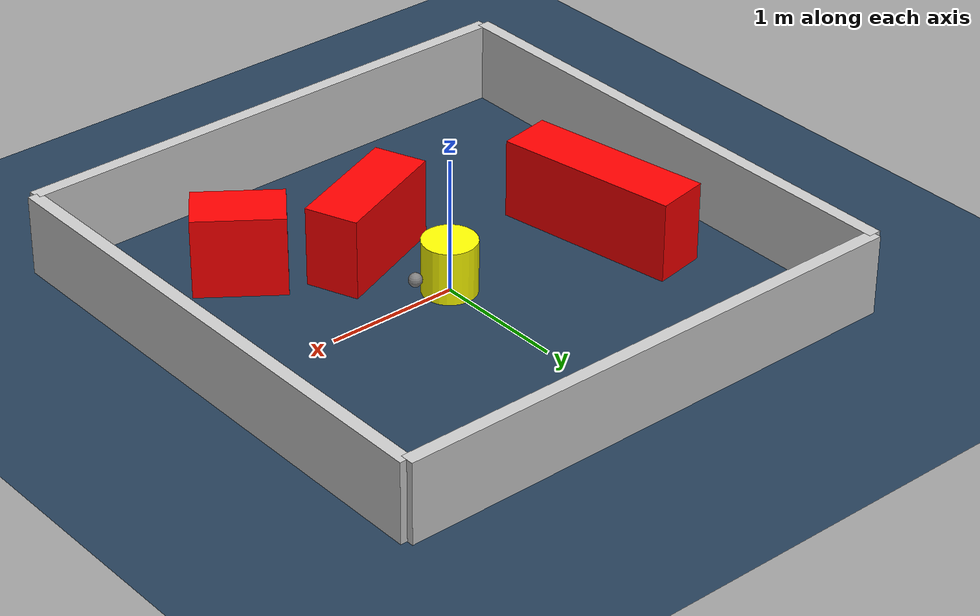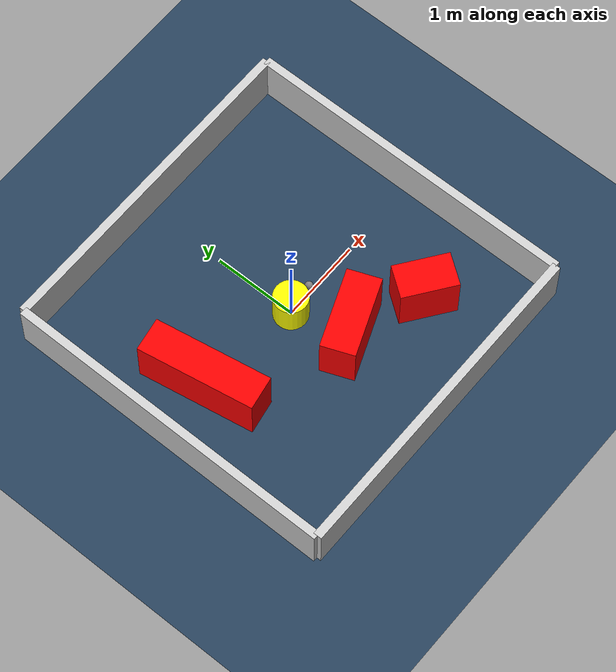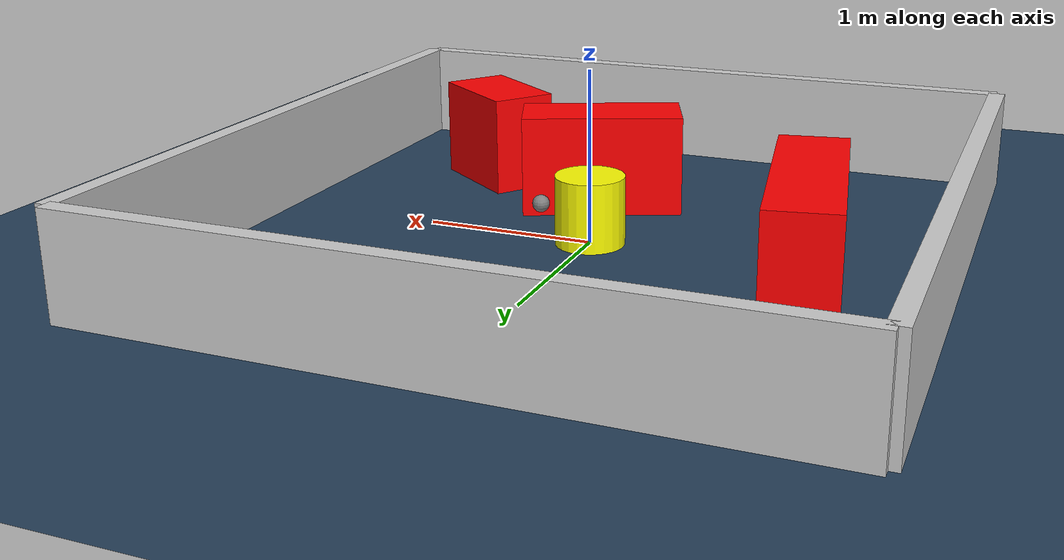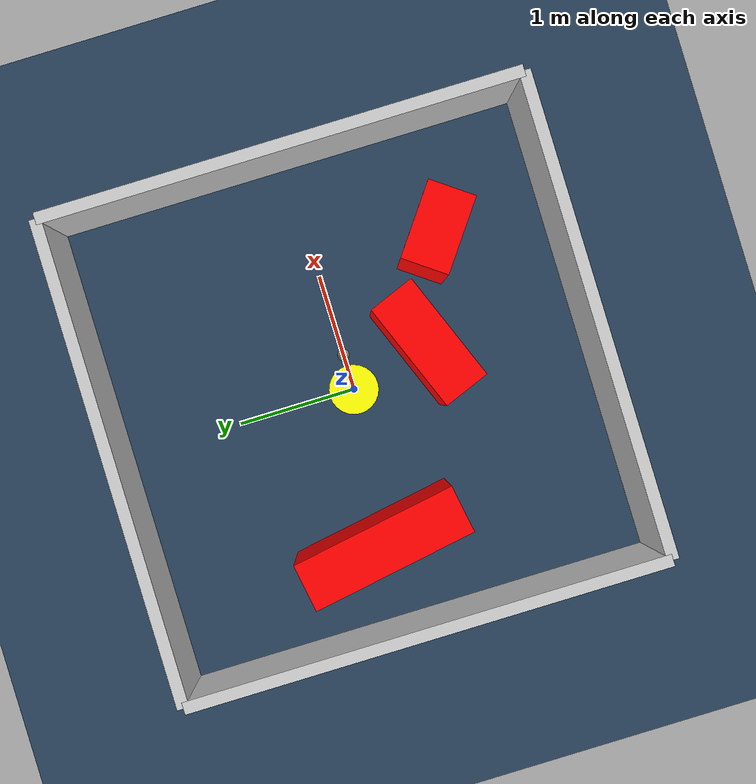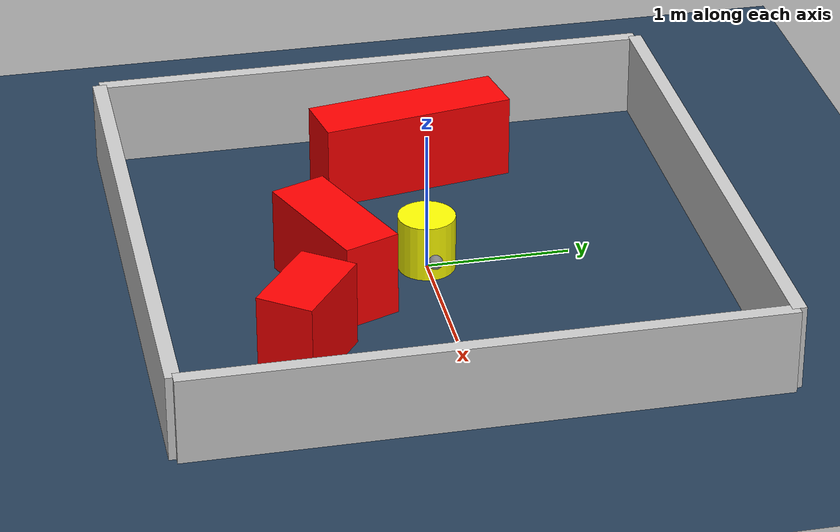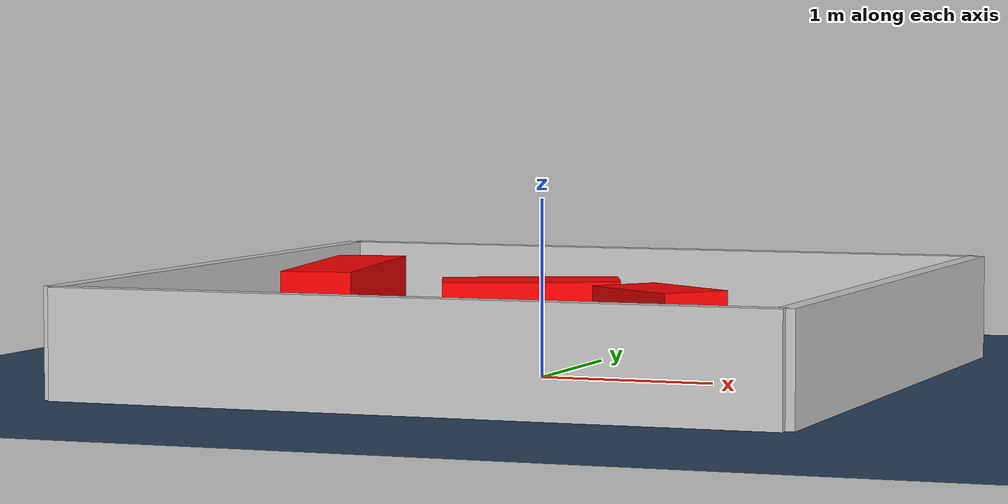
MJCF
<?xml version="1.0" ?>
<mujoco model="generated_environment">
  <option timestep="0.01" integrator="RK4" cone="elliptic"/>
  <default>
    <geom density="1"/>
  </default>
  <asset>
    <texture builtin="gradient" height="3072" rgb1="0.3 0.5 0.7" rgb2="0 0 0" type="skybox" width="512"/>
    <texture builtin="checker" height="300" mark="edge" markrgb="0.8 0.8 0.8" name="groundplane" rgb1="0.2 0.3 0.4" rgb2="0.1 0.2 0.3" type="2d" width="300"/>
    <material name="groundplane" reflectance="0.2" texrepeat="5 5" texture="groundplane" texuniform="true"/>
    <material name="robot" rgba="0.0 1.0 0.0 1"/>
  </asset>
  <worldbody>
    <light dir="0 0 -1" directional="true" pos="0 0 1.5"/>
    <geom condim="4" friction="1.0 0.005 0.001" material="groundplane" name="floor" size="0 0 0.05" type="plane"/>
    <body name="walls">
      <geom name="wall_1" condim="4" pos="-2.0 0.0 0.3" rgba="0.800000011920929 0.800000011920929 0.800000011920929 1.0" size="0.05 2.0 0.3" type="box"/>
      <geom name="wall_2" condim="4" pos="2.0 0.0 0.3" rgba="0.800000011920929 0.800000011920929 0.800000011920929 1.0" size="0.05 2.0 0.3" type="box"/>
      <geom name="wall_3" condim="4" pos="0.0 -2.0 0.3" rgba="0.800000011920929 0.800000011920929 0.800000011920929 1.0" size="2.0 0.05 0.3" type="box"/>
      <geom name="wall_4" condim="4" pos="0.0 2.0 0.3" rgba="0.800000011920929 0.800000011920929 0.800000011920929 1.0" size="2.0 0.05 0.3" type="box"/>
    </body>
    <body name="robot">
      <joint name="joint_x" type="slide" pos="0 0 0" axis="1 0 0"/>
      <joint name="joint_y" type="slide" pos="0 0 0" axis="0 1 0"/>
      <geom name="robot" type="sphere" pos="0.3 0.0 0.2" size="0.05" mass="5." friction="1.0 0.005 0.0001" condim="4" rgba="0.5 0.5 0.5 1.0"/>
      <site name="sensor_ball"/>
    </body>
    <body name="obstacle_movable_1">
      <geom name="obstacle_movable_1" condim="4" pos="0.0 0.0 0.2" euler="0 0 0.0" friction="1.0 0.005 0.001" rgba="1.0 1.0 0.0 1.0" size="0.2 0.2 0.0" type="cylinder" mass="0.1"/>
      <joint type="free"/>
    </body>
    <body name="obstacle_2_static">
      <geom name="obstacle_2_static" condim="4" pos="1.0239003651751706 -1.0020694334798232 0.3" euler="0 0 143.84799702615015" friction="1.0 0.005 0.001" rgba="1 0 0 1" size="0.32814747662106636 0.2 0.3" type="box"/>
    </body>
    <body name="obstacle_3_static">
      <geom name="obstacle_3_static" condim="4" pos="0.18393326890233963 -0.6694474977784868 0.3" euler="0 0 201.5330021632046" friction="1.0 0.005 0.001" rgba="1 0 0 1" size="0.477343176011522 0.2 0.3" type="box"/>
    </body>
    <body name="obstacle_4_static">
      <geom name="obstacle_4_static" condim="4" pos="-1.2597809263918405 0.13646864299659156 0.3" euler="0 0 99.90413403650454" friction="1.0 0.005 0.001" rgba="1 0 0 1" size="0.692663389492215 0.2 0.3" type="box"/>
    </body>
  </worldbody>
  <actuator>
    <motor name="actuator_x" joint="joint_x" gear="1" ctrlrange="-1 1"/>
    <motor name="actuator_y" joint="joint_y" gear="1" ctrlrange="-1 1"/>
  </actuator>
</mujoco>
